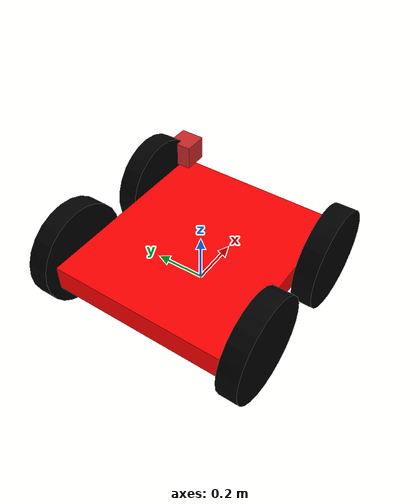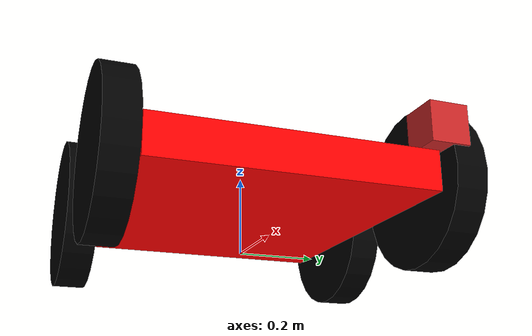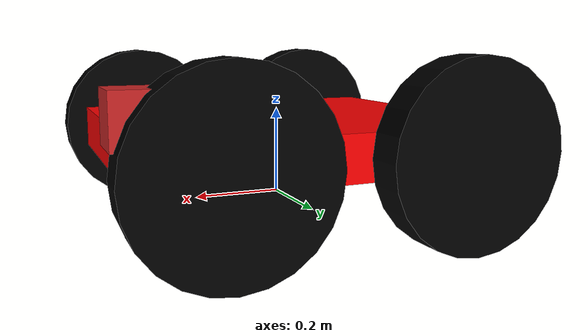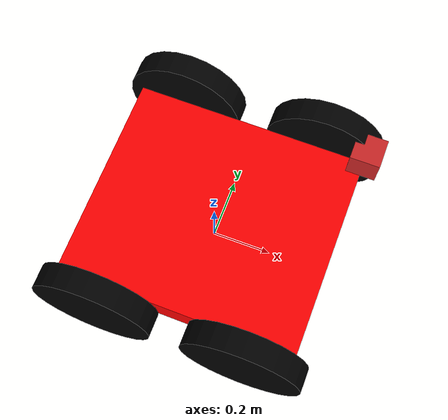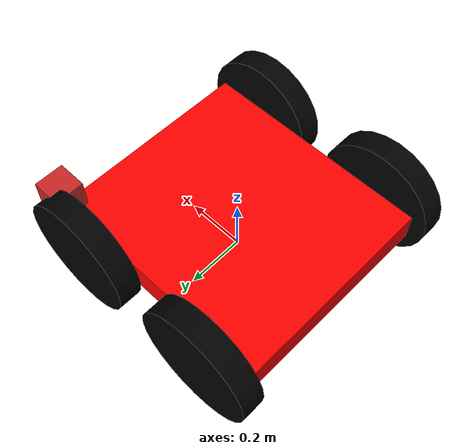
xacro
<?xml version="1.0"?>
<robot xmlns:xacro="http://www.ros.org/wiki/xacro" name="mpav">

<xacro:include filename="$(find krishaka)/urdf/depth_camera.gazebo.xacro"/>
<xacro:include filename="$(find krishaka)/urdf/hokuyo_laser_sensor.gazebo.xacro"/>
<xacro:include filename="$(find krishaka)/urdf/imu_sensor.gazebo.xacro"/>

<link name="base_footprint"/>

<link name="base_link">
    <inertial>
        <origin xyz="0.0 0.0 0.0" rpy="0.0 0.0 0.0"/>
        <mass value="1.0"/>
        <inertia ixx="0.3" ixy="0.0" ixz="0.0"
                 iyy="0.3" iyz="0.0"
                 izz="0.3"/>
    </inertial>
    <visual name="">
        <origin xyz="0.0 0.0 0.0" rpy="0.0 0.0 0.0"/>
        <geometry>
            <box size="0.8 0.7 0.1"/>
        </geometry>
        <material name="">
            <color rgba="1.0 0.0 0.0 1.0"/>
            <texture filename=""/>
        </material>
    </visual>
    <collision>
        <origin xyz="0.0 0.0 0.0" rpy="0.0 0.0 0.0"/>
        <geometry>
            <box size="0.8 0.7 0.1"/>
        </geometry>
    </collision>
</link>

<joint name="base_joint" type="fixed">
    <origin xyz="0.0 0.0 0.135" rpy="0.0 0.0 0.0"/>
    <parent link="base_footprint"/>
    <child link="base_link"/>
    <axis xyz="0.0 0.0 0.0"/>
</joint>

<gazebo reference="base_link">
    <turnGravityOff>false</turnGravityOff>
</gazebo>

<!-- All Wheel links and joints -->

<xacro:macro name="wheel" params="name x y">

    <link name="wheel_${name}_link">
        <inertial>
            <origin xyz="0.0 0.0 0.0" rpy="0.0 0.0 0.0"/>
            <mass value="0.5"/>
            <inertia ixx="0.0" ixy="0.0" ixz="0.0" iyy="0.0" iyz="0.0" izz="0.0"/>
        </inertial>
        <visual name="">
            <origin xyz="0.0 0.0 0.0" rpy="0.0 0.0 0.0"/>
            <geometry>
                <cylinder radius="0.2" length="0.08"/>
            </geometry>
            <material name="black">
                <color rgba=".0 .0 0.0 1.0"/>
            </material>
        </visual>
        <collision>
            <origin xyz="0.0 0.0 0.0" rpy="0.0 0.0 0.0"/>
            <geometry>
                <cylinder radius="0.2" length="0.08"/>
            </geometry>
        </collision>
    </link>

    <joint name="wheel_${name}_joint" type="continuous">
        <origin xyz="${x} ${y} .0" rpy="1.57 0.0 0.0"/>
        <parent link="base_link"/>
        <child link="wheel_${name}_link"/>
        <axis xyz=".0 0.0 1.0"/>
        <limit effort= "100" velocity="100"/>
        <dynamics damping="0.0" friction="0.0"/>
    </joint>

    <gazebo reference ="wheel_${name}">
    <mu1 value="200.0"/>
    <mu2 value="100.0"/>
    <kp value="10000000.0"/>
    <kd value= "1.0"/>
    <material>Gazebo/Black</material>
  </gazebo>

</xacro:macro>

<!-- Wheel Creating using macros -->
<xacro:wheel name="rear_right"  x="0.250" y =" 0.40"/>
<xacro:wheel name="front_right" x="-0.250" y =" 0.40"/>
<xacro:wheel name="front_left"  x="-0.250" y =" -0.40"/>
<xacro:wheel name="rear_left"   x="0.250" y =" -0.40"/>

<!--Plugins-->
  <gazebo>
  <plugin name="gazebo_ros_control" filename="libgazebo_ros_control.so">
    <robotNamespace>/your_robot_name</robotNamespace>
    <!-- Other controller parameters -->
  </plugin>

  <plugin name="differential_drive_controller" filename="libgazebo_ros_diff_drive.so">
    <leftJoint>wheel_rear_left_joint</leftJoint>
    <rightJoint>wheel_rear_right_joint</rightJoint>
    <wheelSeparation>0.5</wheelSeparation>
    <wheelDiameter>0.4</wheelDiameter>
    <publishWheelJointState>true</publishWheelJointState>
  </plugin>

    <plugin name="gazebo_ros_pose" filename="libgazebo_ros_pose.so">
        <bodyName>base_link</bodyName>
        <topicName>robot_pose</topicName>
        <updateRate>50</updateRate>
    </plugin>

    <!-- Other plugins -->

    <plugin name="gazebo_ros_tf_publisher" filename="libgazebo_ros_tf_publisher.so">
        <linkName>base_link</linkName>
        <broadcastTF>true</broadcastTF>
        <child_frame_id>base_link</child_frame_id>
    </plugin>

</gazebo>

</robot>

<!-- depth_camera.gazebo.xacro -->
<robot>

<link name="camera_link">
    <collision>
      <origin xyz="0 0 0" rpy="0 0 0"/>
      <geometry>
    <box size="0.1 0.1 0.1"/>
      </geometry>
    </collision>

    <visual>
      <origin xyz="0 0 0" rpy="0 0 0"/>
      <geometry>
    <box size="0.1 0.1 0.1"/>
      </geometry>
      <material name="red"/>
    </visual>

    <inertial>
      <mass value="1e-5" />
      <origin xyz="0 0 0" rpy="0 0 0"/>
      <inertia ixx="1e-6" ixy="0" ixz="0" iyy="1e-6" iyz="0" izz="1e-6" />
    </inertial>
  </link>

   <joint name="camera_joint" type="fixed">
    <axis xyz="0 1 0" />
    <origin xyz="0.4 0.35 0.1" rpy="0 0 0"/>
    <parent link="base_link"/>
    <child link="camera_link"/>
  </joint>

<gazebo reference="camera_link">
  <sensor name="depth_camera" type="depth">
    <update_rate>20</update_rate>
    <camera>
      <horizontal_fov>1.047198</horizontal_fov>
      <image>
        <width>640</width>
        <height>480</height>
        <format>R8G8B8</format>
      </image>
      <clip>
        <near>0.05</near>
        <far>3</far>
      </clip>
    </camera>
    <plugin name="depth_camera_controller" filename="libgazebo_ros_openni_kinect.so">
      <baseline>0.2</baseline>
      <alwaysOn>true</alwaysOn>
      <updateRate>1.0</updateRate>
      <cameraName>depth_camera_ir</cameraName>
      <imageTopicName>/depth_camera/color/image_raw</imageTopicName>
      <cameraInfoTopicName>/depth_camera/color/camera_info</cameraInfoTopicName>
      <depthImageTopicName>/depth_camera/depth/image_raw</depthImageTopicName>
      <depthImageInfoTopicName>/depth_camera/depth/camera_info</depthImageInfoTopicName>
      <pointCloudTopicName>/depth_camera/depth/points</pointCloudTopicName>
      <frameName>camera_link</frameName>
      <pointCloudCutoff>0.5</pointCloudCutoff>
      <pointCloudCutoffMax>3.0</pointCloudCutoffMax>
      <distortionK1>0.00000001</distortionK1>
      <distortionK2>0.00000001</distortionK2>
      <distortionK3>0.00000001</distortionK3>
      <distortionT1>0.00000001</distortionT1>
      <distortionT2>0.00000001</distortionT2>
      <CxPrime>0</CxPrime>
      <Cx>0</Cx>
      <Cy>0</Cy>
      <focalLength>0</focalLength>
      <hackBaseline>0</hackBaseline>
    </plugin>
  </sensor>
</gazebo>

</robot>
